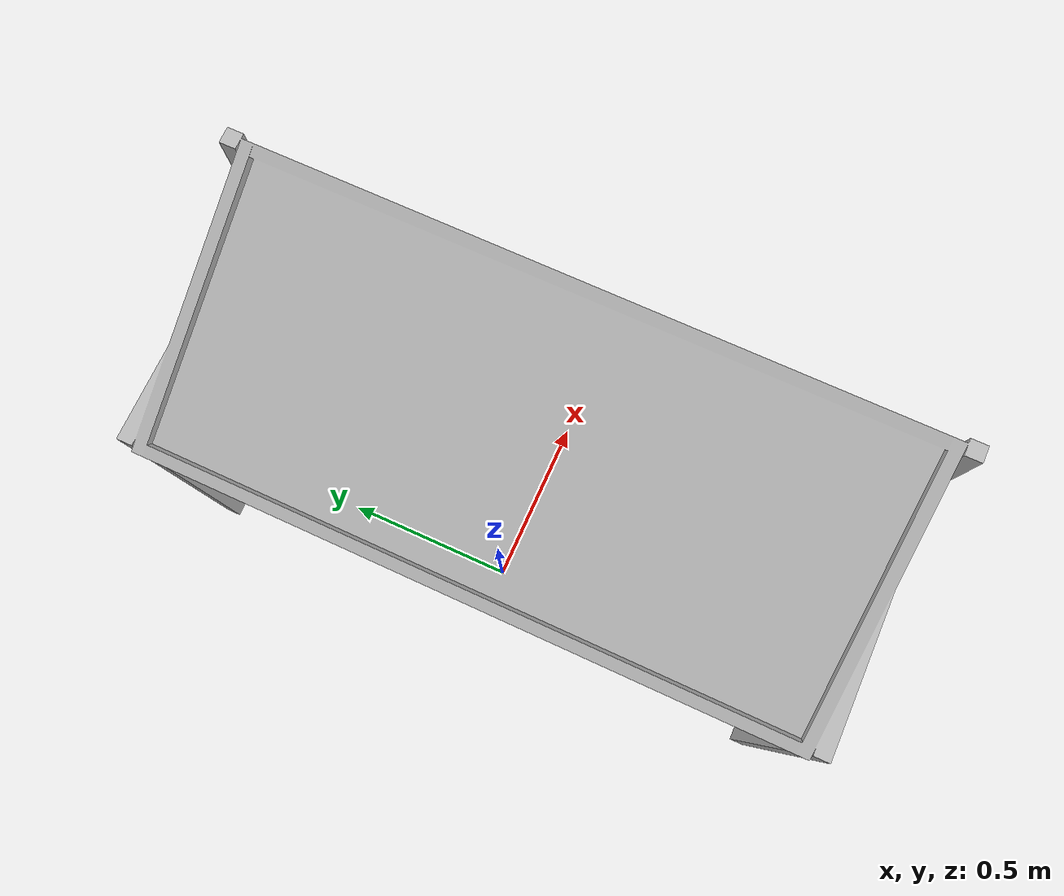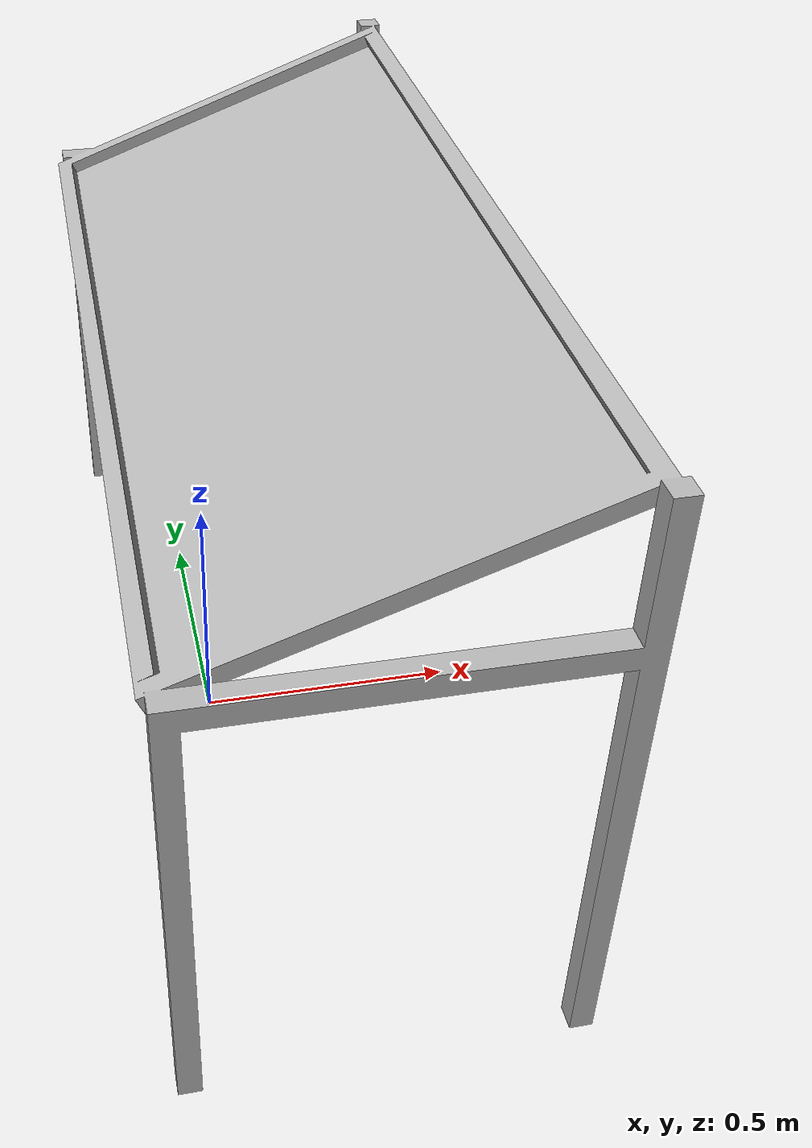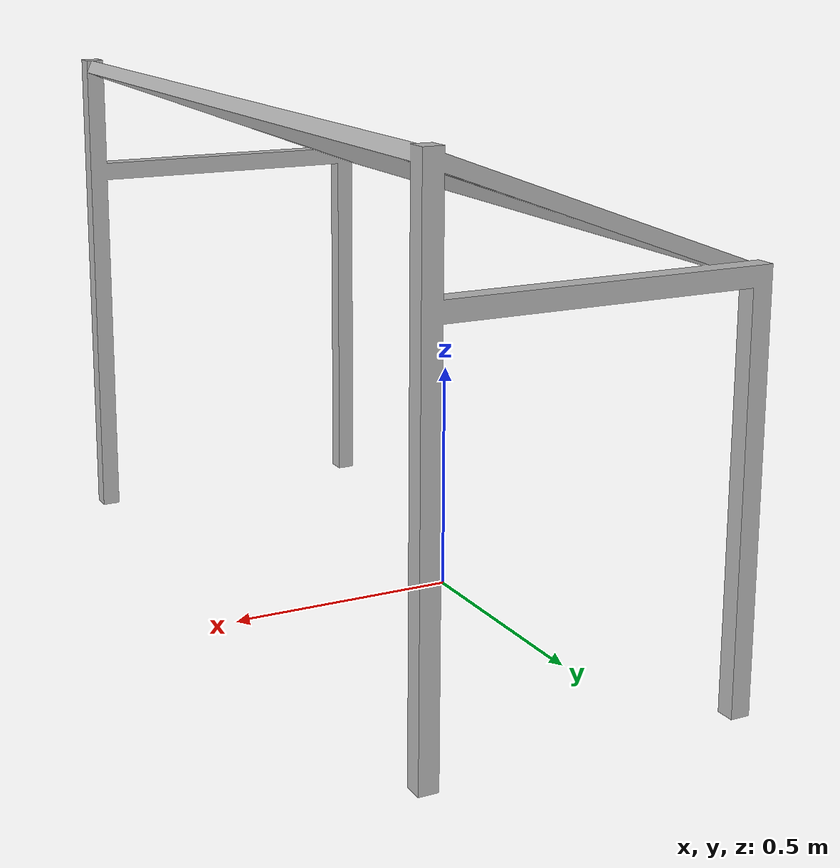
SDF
<?xml version="1.0"?>
<sdf version="1.4">

  <model name="RAAL_op50">

    <static>true</static>

    <link name="link">

      <pose>0 0 0 0 0 0</pose>

      <collision name="station_collision">
        <geometry>
          <mesh>
            <uri>model://RAAL_op50/meshes/RAAL_op50.dae</uri>
          </mesh>
        </geometry>
      </collision>

      <visual name="station_visual">
        <geometry>
          <mesh>
            <uri>model://RAAL_op50/meshes/RAAL_op50.dae</uri>
          </mesh>
        </geometry>

        <material>
          <script>
            <uri>model://RAAL_op50/materials/scripts</uri>
            <uri>model://RAAL_op50/materials/textures</uri>
          </script>
        </material>
      </visual>

    </link>

  </model>
</sdf>
